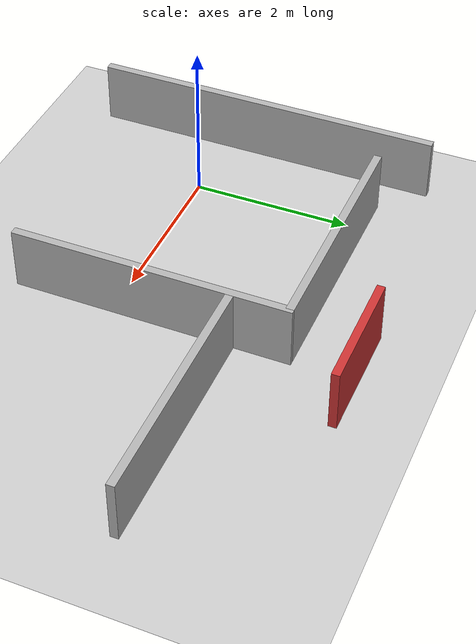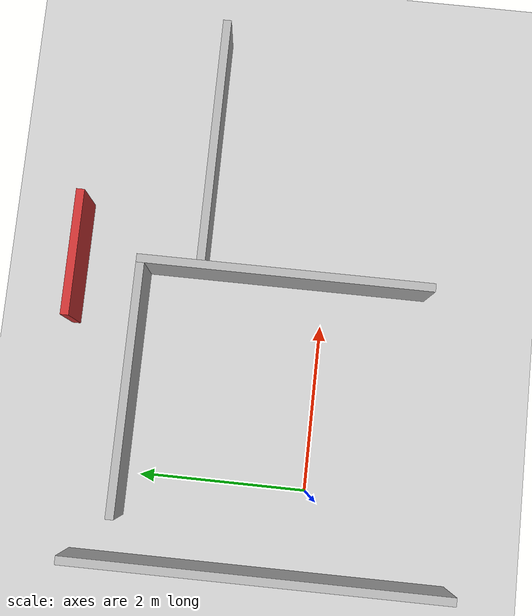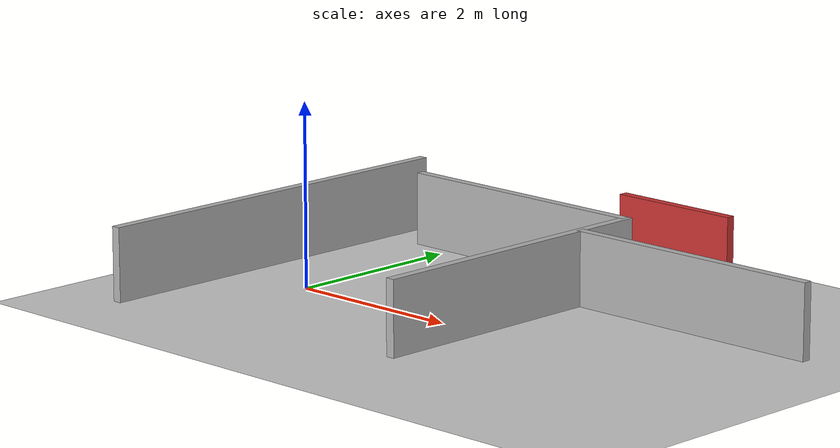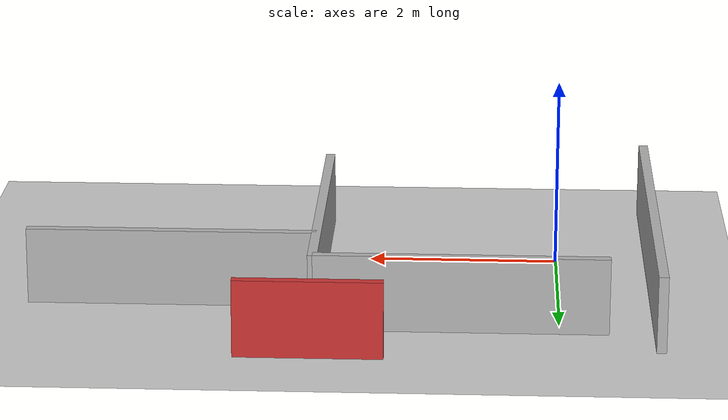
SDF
<?xml version="1.0" ?>
<sdf version="1.6">
  <world name="maze_world">
    <include>
      <uri>model://ground_plane</uri>
    </include>
    <include>
      <uri>model://sun</uri>
    </include>

    <!-- World Physics -->
    <physics type="ode">
      <max_step_size>0.001</max_step_size>
      <real_time_factor>1.0</real_time_factor>
      <real_time_update_rate>1000</real_time_update_rate>
    </physics>

    <!-- Wall 1 -->
    <model name="wall_1">
      <static>true</static>
      <pose>2.5 0.5 0.4 0 0 0</pose>
      <link name="link">
        <collision name="collision">
          <geometry>
            <box>
              <size>0.1 3.5 0.8</size>
            </box>
          </geometry>
        </collision>
        <visual name="visual">
          <geometry>
            <box>
              <size>0.1 3.5 0.8</size>
            </box>
          </geometry>
          <material>
            <ambient>0.6 0.6 0.6 1</ambient>
            <diffuse>0.7 0.7 0.7 1</diffuse>
          </material>
        </visual>
      </link>
    </model>

    <!-- Wall 2 -->
    <model name="wall_2">
      <static>true</static>
      <pose>1.0 2.2 0.4 0 0 1.5708</pose>
      <link name="link">
        <collision name="collision">
          <geometry>
            <box>
              <size>0.1 3.0 0.8</size>
            </box>
          </geometry>
        </collision>
        <visual name="visual">
          <geometry>
            <box>
              <size>0.1 3.0 0.8</size>
            </box>
          </geometry>
          <material>
            <ambient>0.6 0.6 0.6 1</ambient>
            <diffuse>0.7 0.7 0.7 1</diffuse>
          </material>
        </visual>
      </link>
    </model>

    <!-- Wall 3 -->
    <model name="wall_3">
      <static>true</static>
      <pose>-1.0 0.5 0.4 0 0 0</pose>
      <link name="link">
        <collision name="collision">
          <geometry>
            <box>
              <size>0.1 4.5 0.8</size>
            </box>
          </geometry>
        </collision>
        <visual name="visual">
          <geometry>
            <box>
              <size>0.1 4.5 0.8</size>
            </box>
          </geometry>
          <material>
            <ambient>0.6 0.6 0.6 1</ambient>
            <diffuse>0.7 0.7 0.7 1</diffuse>
          </material>
        </visual>
      </link>
    </model>

    <!-- Wall 4 (Target area block for dynamic avoidance testing) -->
    <model name="wall_4">
      <static>true</static>
      <pose>2.5 3.0 0.4 0 0 0</pose>
      <link name="link">
        <collision name="collision">
          <geometry>
            <box>
              <size>1.5 0.1 0.8</size>
            </box>
          </geometry>
        </collision>
        <visual name="visual">
          <geometry>
            <box>
              <size>1.5 0.1 0.8</size>
            </box>
          </geometry>
          <material>
            <ambient>0.8 0.2 0.2 1</ambient>
            <diffuse>0.8 0.2 0.2 1</diffuse>
          </material>
        </visual>
      </link>
    </model>

    <!-- Wall 5 -->
    <model name="wall_5">
      <static>true</static>
      <pose>4.0 1.5 0.4 0 0 1.5708</pose>
      <link name="link">
        <collision name="collision">
          <geometry>
            <box>
              <size>0.1 3.0 0.8</size>
            </box>
          </geometry>
        </collision>
        <visual name="visual">
          <geometry>
            <box>
              <size>0.1 3.0 0.8</size>
            </box>
          </geometry>
          <material>
            <ambient>0.6 0.6 0.6 1</ambient>
            <diffuse>0.7 0.7 0.7 1</diffuse>
          </material>
        </visual>
      </link>
    </model>

  </world>
</sdf>
